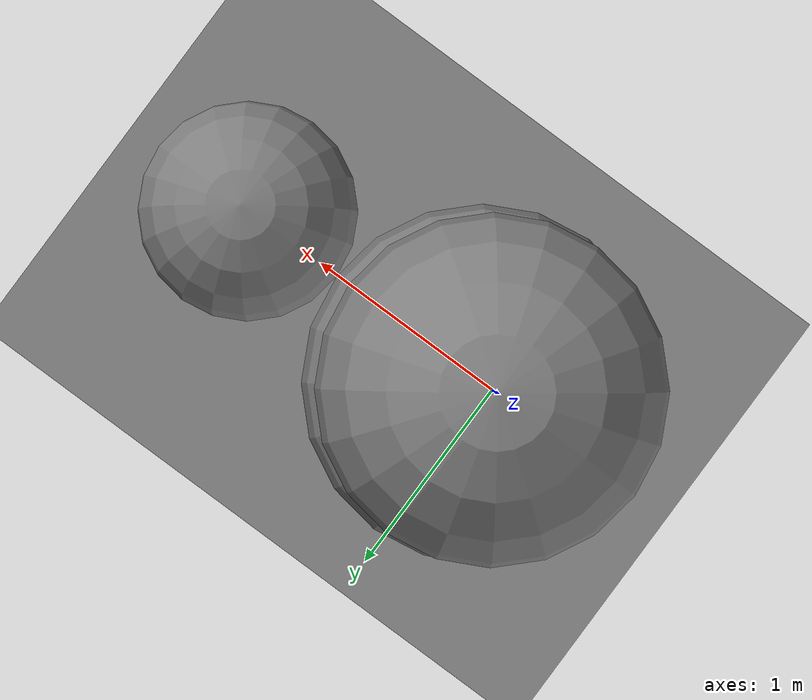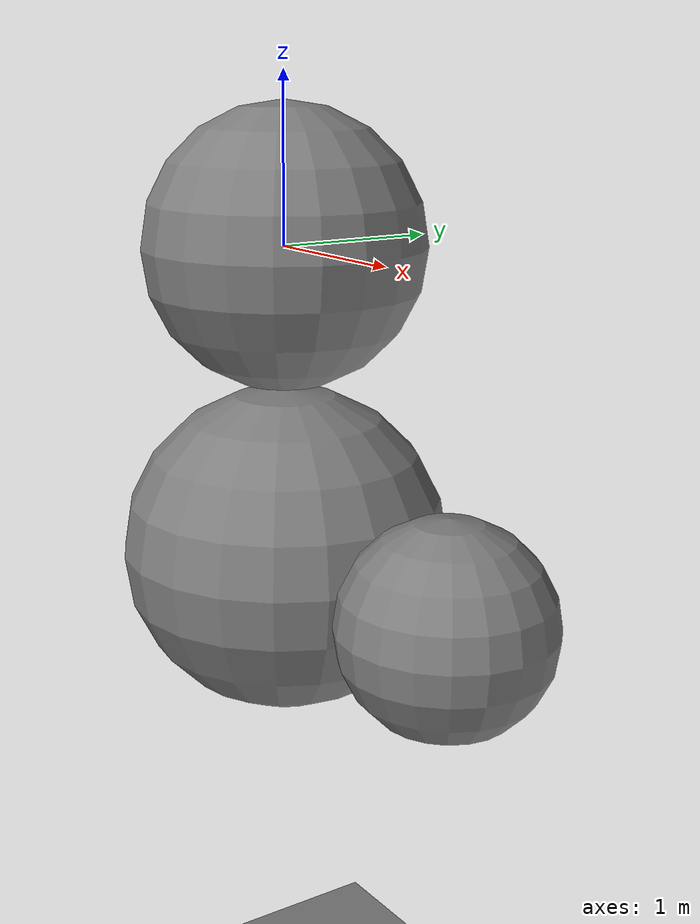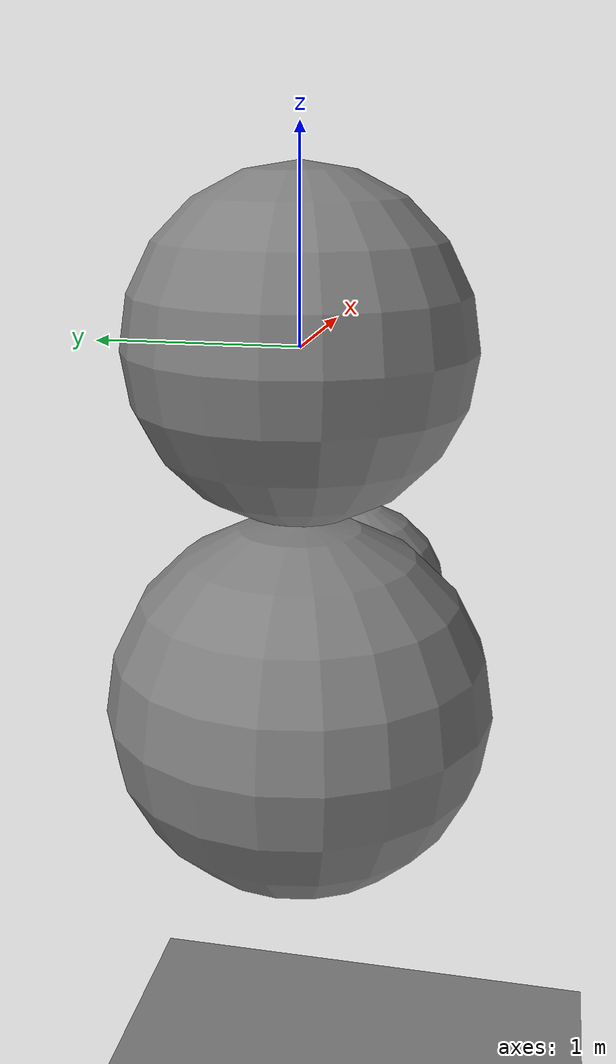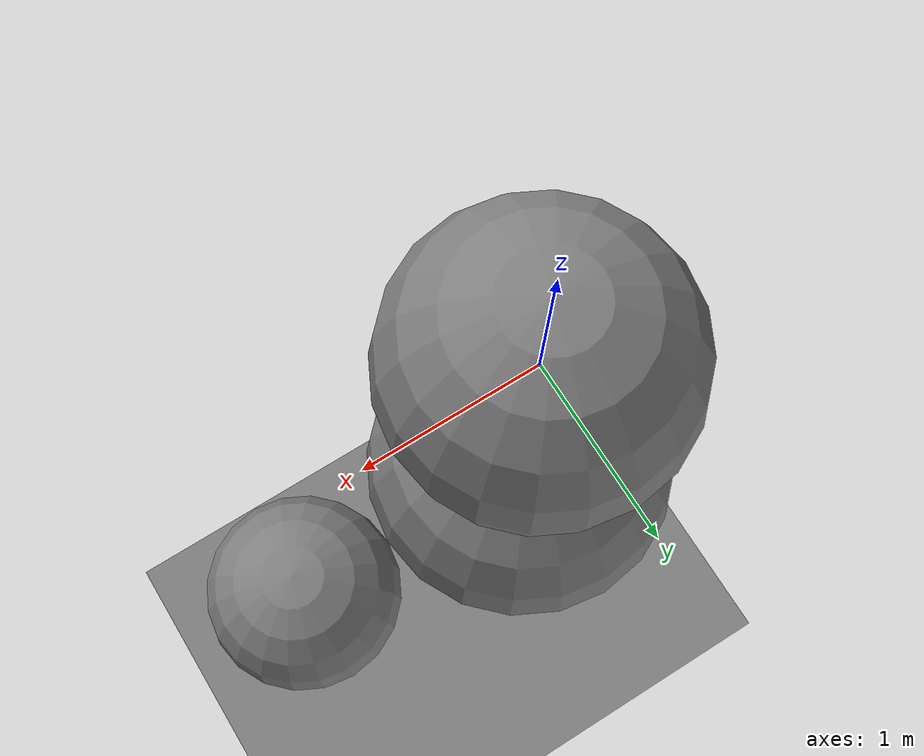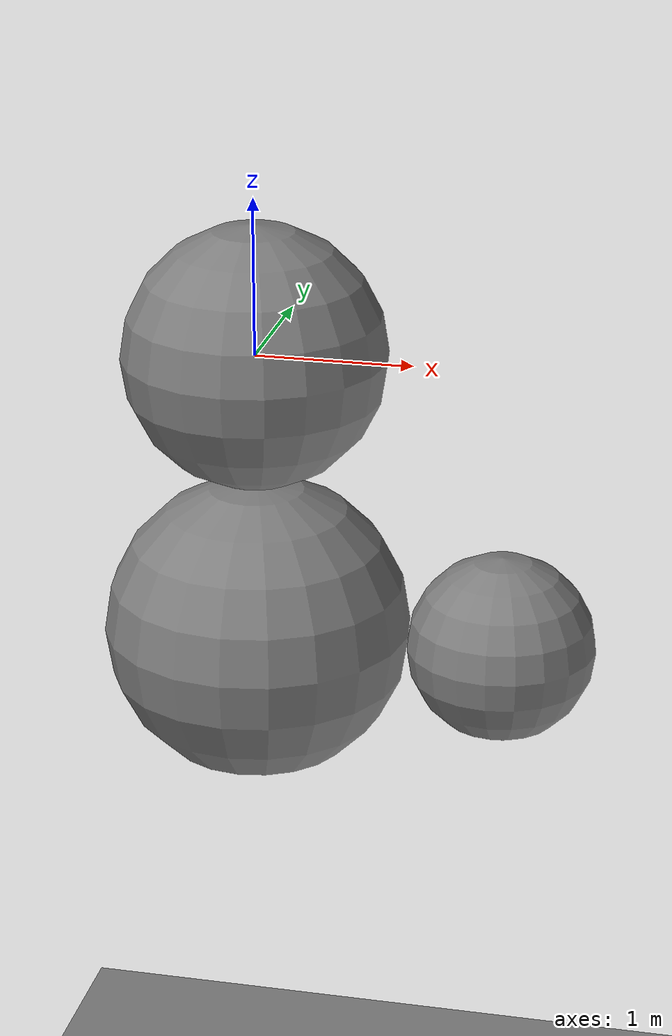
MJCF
<mujoco model="unnamed_model">
  <default>
    <default class="/"/>
  </default>
  <worldbody>
    <geom name="//unnamed_geom_0" class="/" type="plane" size="100 100 0.10000000000000001" pos="0 0 -5.6098993515497506"/>
    <body name="body0" pos="0 0 0">
      <joint name="//unnamed_joint_0" class="/" type="free"/>
      <geom name="//unnamed_geom_1" class="/" type="sphere" size="0.83540273454038494 0.83540273454038494 0.83540273454038494"/>
      <body name="body1" pos="0 0 -1.8151006953633786">
        <geom name="//unnamed_geom_2" class="/" type="sphere" size="0.97969796082299365 0.97969796082299365 0.97969796082299365"/>
        <joint name="//unnamed_joint_1" class="/" type="hinge" axis="0 0 1"/>
        <body name="body2" pos="1.5784376025910882 0 0">
          <geom name="//unnamed_geom_3" class="/" type="sphere" size="0.59873964176809469 0.59873964176809469 0.59873964176809469"/>
          <joint name="//unnamed_joint_2" class="/" type="ball" axis="-1 0 0"/>
        </body>
      </body>
    </body>
  </worldbody>
  <actuator>
    <motor name="body1_motor" class="/" ctrllimited="true" ctrlrange="-100 100" joint="//unnamed_joint_1"/>
    <motor name="body2_motor" class="/" ctrllimited="true" ctrlrange="-100 100" joint="//unnamed_joint_2"/>
  </actuator>
</mujoco>
